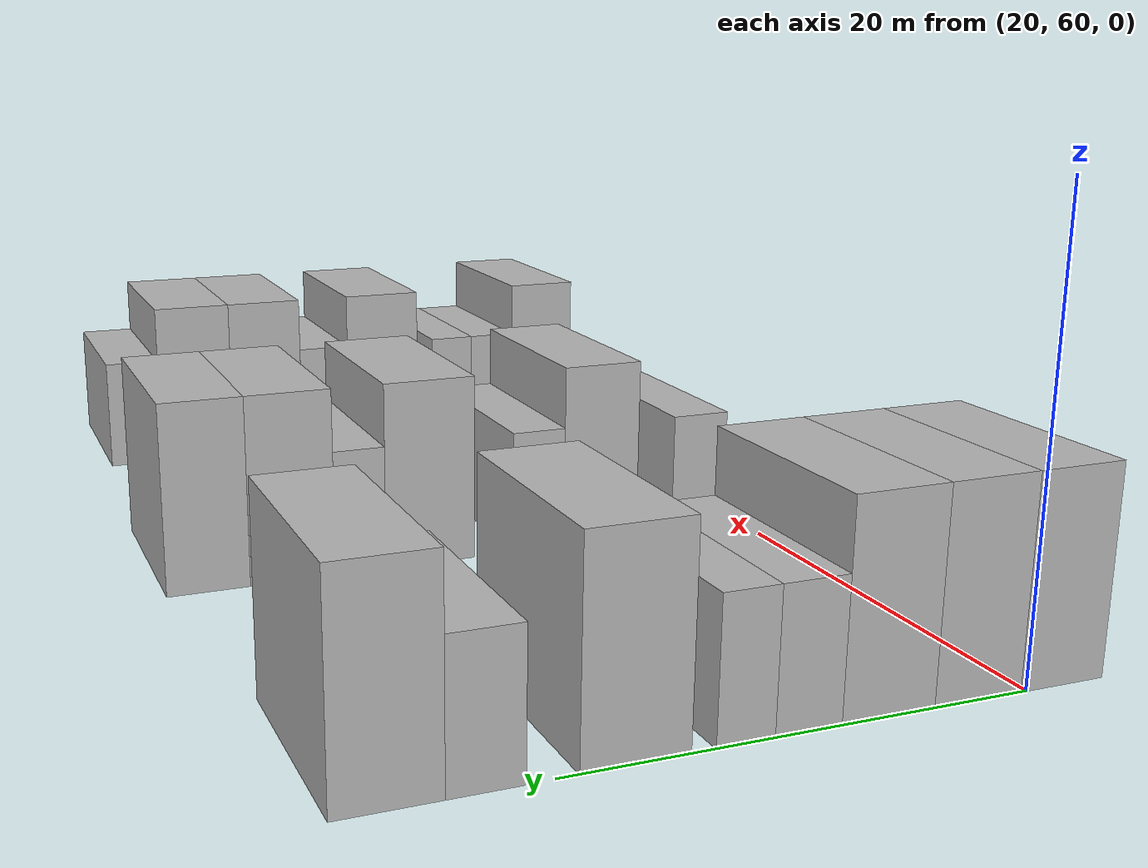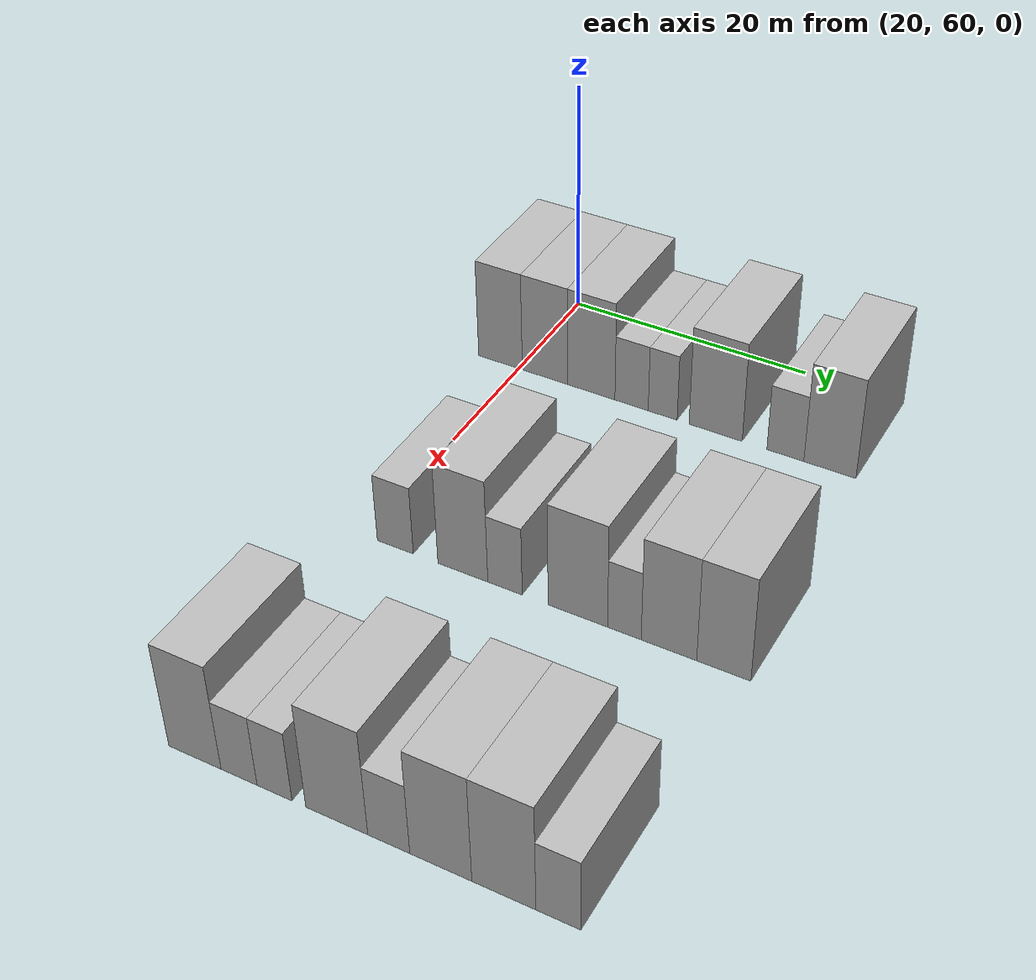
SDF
<sdf version="1.6">
 <world name="default">
  <model name="building_83">
   <static>1</static>
   <pose>25.0000 58.2975 0 0.000000 0.000000 0.000000</pose>
   <link name="link">
    <pose>0 0 4.50 0 0 0</pose>
    <collision name="collision"><geometry><box><size>10.0000 3.9589 9.0000</size></box></geometry></collision>
    <visual name="visual">
     <cast_shadows>0</cast_shadows>
     <geometry><box><size>10.0000 3.9589 9.0000</size></box></geometry>
     <material>
      <script>
       <uri>model://HANNAS_wall/materials/scripts</uri>
       <uri>model://HANNAS_wall/materials/textures</uri>
       <name>vrc/HANNAS_wall</name>
      </script>
     </material>
    </visual>
   </link>
  </model>
  <model name="building_84">
   <static>1</static>
   <pose>25.0000 62.2839 0 0.000000 0.000000 0.000000</pose>
   <link name="link">
    <pose>0 0 4.50 0 0 0</pose>
    <collision name="collision"><geometry><box><size>10.0000 4.0139 9.0000</size></box></geometry></collision>
    <visual name="visual">
     <cast_shadows>0</cast_shadows>
     <geometry><box><size>10.0000 4.0139 9.0000</size></box></geometry>
     <material>
      <script>
       <uri>model://HANNAS_wall/materials/scripts</uri>
       <uri>model://HANNAS_wall/materials/textures</uri>
       <name>vrc/HANNAS_wall</name>
      </script>
     </material>
    </visual>
   </link>
  </model>
  <model name="building_85">
   <static>1</static>
   <pose>25.0000 66.3540 0 0.000000 0.000000 0.000000</pose>
   <link name="link">
    <pose>0 0 4.50 0 0 0</pose>
    <collision name="collision"><geometry><box><size>10.0000 4.1264 9.0000</size></box></geometry></collision>
    <visual name="visual">
     <cast_shadows>0</cast_shadows>
     <geometry><box><size>10.0000 4.1264 9.0000</size></box></geometry>
     <material>
      <script>
       <uri>model://HANNAS_wall/materials/scripts</uri>
       <uri>model://HANNAS_wall/materials/textures</uri>
       <name>vrc/HANNAS_wall</name>
      </script>
     </material>
    </visual>
   </link>
  </model>
  <model name="building_86">
   <static>1</static>
   <pose>25.0000 69.8412 0 0.000000 0.000000 0.000000</pose>
   <link name="link">
    <pose>0 0 3.00 0 0 0</pose>
    <collision name="collision"><geometry><box><size>10.0000 2.8480 6.0000</size></box></geometry></collision>
    <visual name="visual">
     <cast_shadows>0</cast_shadows>
     <geometry><box><size>10.0000 2.8480 6.0000</size></box></geometry>
     <material>
      <script>
       <uri>model://HANNAS_wall/materials/scripts</uri>
       <uri>model://HANNAS_wall/materials/textures</uri>
       <name>vrc/HANNAS_wall</name>
      </script>
     </material>
    </visual>
   </link>
  </model>
  <model name="building_87">
   <static>1</static>
   <pose>25.0000 72.4859 0 0.000000 0.000000 0.000000</pose>
   <link name="link">
    <pose>0 0 3.00 0 0 0</pose>
    <collision name="collision"><geometry><box><size>10.0000 2.4414 6.0000</size></box></geometry></collision>
    <visual name="visual">
     <cast_shadows>0</cast_shadows>
     <geometry><box><size>10.0000 2.4414 6.0000</size></box></geometry>
     <material>
      <script>
       <uri>model://HANNAS_wall/materials/scripts</uri>
       <uri>model://HANNAS_wall/materials/textures</uri>
       <name>vrc/HANNAS_wall</name>
      </script>
     </material>
    </visual>
   </link>
  </model>
  <model name="building_88">
   <static>1</static>
   <pose>25.0000 76.9000 0 0.000000 0.000000 0.000000</pose>
   <link name="link">
    <pose>0 0 4.50 0 0 0</pose>
    <collision name="collision"><geometry><box><size>10.0000 4.3868 9.0000</size></box></geometry></collision>
    <visual name="visual">
     <cast_shadows>0</cast_shadows>
     <geometry><box><size>10.0000 4.3868 9.0000</size></box></geometry>
     <material>
      <script>
       <uri>model://HANNAS_wall/materials/scripts</uri>
       <uri>model://HANNAS_wall/materials/textures</uri>
       <name>vrc/HANNAS_wall</name>
      </script>
     </material>
    </visual>
   </link>
  </model>
  <model name="building_89">
   <static>1</static>
   <pose>25.0000 82.5690 0 0.000000 0.000000 0.000000</pose>
   <link name="link">
    <pose>0 0 3.00 0 0 0</pose>
    <collision name="collision"><geometry><box><size>10.0000 2.9511 6.0000</size></box></geometry></collision>
    <visual name="visual">
     <cast_shadows>0</cast_shadows>
     <geometry><box><size>10.0000 2.9511 6.0000</size></box></geometry>
     <material>
      <script>
       <uri>model://HANNAS_wall/materials/scripts</uri>
       <uri>model://HANNAS_wall/materials/textures</uri>
       <name>vrc/HANNAS_wall</name>
      </script>
     </material>
    </visual>
   </link>
  </model>
  <model name="building_90">
   <static>1</static>
   <pose>25.0000 86.0949 0 0.000000 0.000000 0.000000</pose>
   <link name="link">
    <pose>0 0 4.50 0 0 0</pose>
    <collision name="collision"><geometry><box><size>10.0000 4.1008 9.0000</size></box></geometry></collision>
    <visual name="visual">
     <cast_shadows>0</cast_shadows>
     <geometry><box><size>10.0000 4.1008 9.0000</size></box></geometry>
     <material>
      <script>
       <uri>model://HANNAS_wall/materials/scripts</uri>
       <uri>model://HANNAS_wall/materials/textures</uri>
       <name>vrc/HANNAS_wall</name>
      </script>
     </material>
    </visual>
   </link>
  </model>
  <model name="building_214">
   <static>1</static>
   <pose>47.0000 62.4388 0 0.000000 0.000000 0.000000</pose>
   <link name="link">
    <pose>0 0 3.00 0 0 0</pose>
    <collision name="collision"><geometry><box><size>10.0000 2.9589 6.0000</size></box></geometry></collision>
    <visual name="visual">
     <cast_shadows>0</cast_shadows>
     <geometry><box><size>10.0000 2.9589 6.0000</size></box></geometry>
     <material>
      <script>
       <uri>model://HANNAS_wall/materials/scripts</uri>
       <uri>model://HANNAS_wall/materials/textures</uri>
       <name>vrc/HANNAS_wall</name>
      </script>
     </material>
    </visual>
   </link>
  </model>
  <model name="building_215">
   <static>1</static>
   <pose>47.0000 67.9080 0 0.000000 0.000000 0.000000</pose>
   <link name="link">
    <pose>0 0 4.50 0 0 0</pose>
    <collision name="collision"><geometry><box><size>10.0000 3.9795 9.0000</size></box></geometry></collision>
    <visual name="visual">
     <cast_shadows>0</cast_shadows>
     <geometry><box><size>10.0000 3.9795 9.0000</size></box></geometry>
     <material>
      <script>
       <uri>model://HANNAS_wall/materials/scripts</uri>
       <uri>model://HANNAS_wall/materials/textures</uri>
       <name>vrc/HANNAS_wall</name>
      </script>
     </material>
    </visual>
   </link>
  </model>
  <model name="building_216">
   <static>1</static>
   <pose>47.0000 71.2483 0 0.000000 0.000000 0.000000</pose>
   <link name="link">
    <pose>0 0 3.00 0 0 0</pose>
    <collision name="collision"><geometry><box><size>10.0000 2.7011 6.0000</size></box></geometry></collision>
    <visual name="visual">
     <cast_shadows>0</cast_shadows>
     <geometry><box><size>10.0000 2.7011 6.0000</size></box></geometry>
     <material>
      <script>
       <uri>model://HANNAS_wall/materials/scripts</uri>
       <uri>model://HANNAS_wall/materials/textures</uri>
       <name>vrc/HANNAS_wall</name>
      </script>
     </material>
    </visual>
   </link>
  </model>
  <model name="building_217">
   <static>1</static>
   <pose>47.0000 76.8460 0 0.000000 0.000000 0.000000</pose>
   <link name="link">
    <pose>0 0 4.50 0 0 0</pose>
    <collision name="collision"><geometry><box><size>10.0000 4.4944 9.0000</size></box></geometry></collision>
    <visual name="visual">
     <cast_shadows>0</cast_shadows>
     <geometry><box><size>10.0000 4.4944 9.0000</size></box></geometry>
     <material>
      <script>
       <uri>model://HANNAS_wall/materials/scripts</uri>
       <uri>model://HANNAS_wall/materials/textures</uri>
       <name>vrc/HANNAS_wall</name>
      </script>
     </material>
    </visual>
   </link>
  </model>
  <model name="building_218">
   <static>1</static>
   <pose>47.0000 80.3409 0 0.000000 0.000000 0.000000</pose>
   <link name="link">
    <pose>0 0 3.00 0 0 0</pose>
    <collision name="collision"><geometry><box><size>10.0000 2.4952 6.0000</size></box></geometry></collision>
    <visual name="visual">
     <cast_shadows>0</cast_shadows>
     <geometry><box><size>10.0000 2.4952 6.0000</size></box></geometry>
     <material>
      <script>
       <uri>model://HANNAS_wall/materials/scripts</uri>
       <uri>model://HANNAS_wall/materials/textures</uri>
       <name>vrc/HANNAS_wall</name>
      </script>
     </material>
    </visual>
   </link>
  </model>
  <model name="building_219">
   <static>1</static>
   <pose>47.0000 83.6094 0 0.000000 0.000000 0.000000</pose>
   <link name="link">
    <pose>0 0 4.50 0 0 0</pose>
    <collision name="collision"><geometry><box><size>10.0000 4.0419 9.0000</size></box></geometry></collision>
    <visual name="visual">
     <cast_shadows>0</cast_shadows>
     <geometry><box><size>10.0000 4.0419 9.0000</size></box></geometry>
     <material>
      <script>
       <uri>model://HANNAS_wall/materials/scripts</uri>
       <uri>model://HANNAS_wall/materials/textures</uri>
       <name>vrc/HANNAS_wall</name>
      </script>
     </material>
    </visual>
   </link>
  </model>
  <model name="building_220">
   <static>1</static>
   <pose>47.0000 87.5590 0 0.000000 0.000000 0.000000</pose>
   <link name="link">
    <pose>0 0 4.50 0 0 0</pose>
    <collision name="collision"><geometry><box><size>10.0000 3.8572 9.0000</size></box></geometry></collision>
    <visual name="visual">
     <cast_shadows>0</cast_shadows>
     <geometry><box><size>10.0000 3.8572 9.0000</size></box></geometry>
     <material>
      <script>
       <uri>model://HANNAS_wall/materials/scripts</uri>
       <uri>model://HANNAS_wall/materials/textures</uri>
       <name>vrc/HANNAS_wall</name>
      </script>
     </material>
    </visual>
   </link>
  </model>
  <model name="building_332">
   <static>1</static>
   <pose>69.0000 61.7496 0 0.000000 0.000000 0.000000</pose>
   <link name="link">
    <pose>0 0 4.50 0 0 0</pose>
    <collision name="collision"><geometry><box><size>10.0000 3.9934 9.0000</size></box></geometry></collision>
    <visual name="visual">
     <cast_shadows>0</cast_shadows>
     <geometry><box><size>10.0000 3.9934 9.0000</size></box></geometry>
     <material>
      <script>
       <uri>model://HANNAS_wall/materials/scripts</uri>
       <uri>model://HANNAS_wall/materials/textures</uri>
       <name>vrc/HANNAS_wall</name>
      </script>
     </material>
    </visual>
   </link>
  </model>
  <model name="building_333">
   <static>1</static>
   <pose>69.0000 65.0935 0 0.000000 0.000000 0.000000</pose>
   <link name="link">
    <pose>0 0 3.00 0 0 0</pose>
    <collision name="collision"><geometry><box><size>10.0000 2.6945 6.0000</size></box></geometry></collision>
    <visual name="visual">
     <cast_shadows>0</cast_shadows>
     <geometry><box><size>10.0000 2.6945 6.0000</size></box></geometry>
     <material>
      <script>
       <uri>model://HANNAS_wall/materials/scripts</uri>
       <uri>model://HANNAS_wall/materials/textures</uri>
       <name>vrc/HANNAS_wall</name>
      </script>
     </material>
    </visual>
   </link>
  </model>
  <model name="building_334">
   <static>1</static>
   <pose>69.0000 67.7246 0 0.000000 0.000000 0.000000</pose>
   <link name="link">
    <pose>0 0 3.00 0 0 0</pose>
    <collision name="collision"><geometry><box><size>10.0000 2.5676 6.0000</size></box></geometry></collision>
    <visual name="visual">
     <cast_shadows>0</cast_shadows>
     <geometry><box><size>10.0000 2.5676 6.0000</size></box></geometry>
     <material>
      <script>
       <uri>model://HANNAS_wall/materials/scripts</uri>
       <uri>model://HANNAS_wall/materials/textures</uri>
       <name>vrc/HANNAS_wall</name>
      </script>
     </material>
    </visual>
   </link>
  </model>
  <model name="building_335">
   <static>1</static>
   <pose>69.0000 72.2238 0 0.000000 0.000000 0.000000</pose>
   <link name="link">
    <pose>0 0 4.50 0 0 0</pose>
    <collision name="collision"><geometry><box><size>10.0000 4.4308 9.0000</size></box></geometry></collision>
    <visual name="visual">
     <cast_shadows>0</cast_shadows>
     <geometry><box><size>10.0000 4.4308 9.0000</size></box></geometry>
     <material>
      <script>
       <uri>model://HANNAS_wall/materials/scripts</uri>
       <uri>model://HANNAS_wall/materials/textures</uri>
       <name>vrc/HANNAS_wall</name>
      </script>
     </material>
    </visual>
   </link>
  </model>
  <model name="building_336">
   <static>1</static>
   <pose>69.0000 75.9025 0 0.000000 0.000000 0.000000</pose>
   <link name="link">
    <pose>0 0 3.00 0 0 0</pose>
    <collision name="collision"><geometry><box><size>10.0000 2.9266 6.0000</size></box></geometry></collision>
    <visual name="visual">
     <cast_shadows>0</cast_shadows>
     <geometry><box><size>10.0000 2.9266 6.0000</size></box></geometry>
     <material>
      <script>
       <uri>model://HANNAS_wall/materials/scripts</uri>
       <uri>model://HANNAS_wall/materials/textures</uri>
       <name>vrc/HANNAS_wall</name>
      </script>
     </material>
    </visual>
   </link>
  </model>
  <model name="building_337">
   <static>1</static>
   <pose>69.0000 79.4748 0 0.000000 0.000000 0.000000</pose>
   <link name="link">
    <pose>0 0 4.50 0 0 0</pose>
    <collision name="collision"><geometry><box><size>10.0000 4.2180 9.0000</size></box></geometry></collision>
    <visual name="visual">
     <cast_shadows>0</cast_shadows>
     <geometry><box><size>10.0000 4.2180 9.0000</size></box></geometry>
     <material>
      <script>
       <uri>model://HANNAS_wall/materials/scripts</uri>
       <uri>model://HANNAS_wall/materials/textures</uri>
       <name>vrc/HANNAS_wall</name>
      </script>
     </material>
    </visual>
   </link>
  </model>
  <model name="building_338">
   <static>1</static>
   <pose>69.0000 83.7034 0 0.000000 0.000000 0.000000</pose>
   <link name="link">
    <pose>0 0 4.50 0 0 0</pose>
    <collision name="collision"><geometry><box><size>10.0000 4.2393 9.0000</size></box></geometry></collision>
    <visual name="visual">
     <cast_shadows>0</cast_shadows>
     <geometry><box><size>10.0000 4.2393 9.0000</size></box></geometry>
     <material>
      <script>
       <uri>model://HANNAS_wall/materials/scripts</uri>
       <uri>model://HANNAS_wall/materials/textures</uri>
       <name>vrc/HANNAS_wall</name>
      </script>
     </material>
    </visual>
   </link>
  </model>
  <model name="building_339">
   <static>1</static>
   <pose>69.0000 87.2763 0 0.000000 0.000000 0.000000</pose>
   <link name="link">
    <pose>0 0 3.00 0 0 0</pose>
    <collision name="collision"><geometry><box><size>10.0000 2.9066 6.0000</size></box></geometry></collision>
    <visual name="visual">
     <cast_shadows>0</cast_shadows>
     <geometry><box><size>10.0000 2.9066 6.0000</size></box></geometry>
     <material>
      <script>
       <uri>model://HANNAS_wall/materials/scripts</uri>
       <uri>model://HANNAS_wall/materials/textures</uri>
       <name>vrc/HANNAS_wall</name>
      </script>
     </material>
    </visual>
   </link>
  </model>
 </world>
</sdf>
